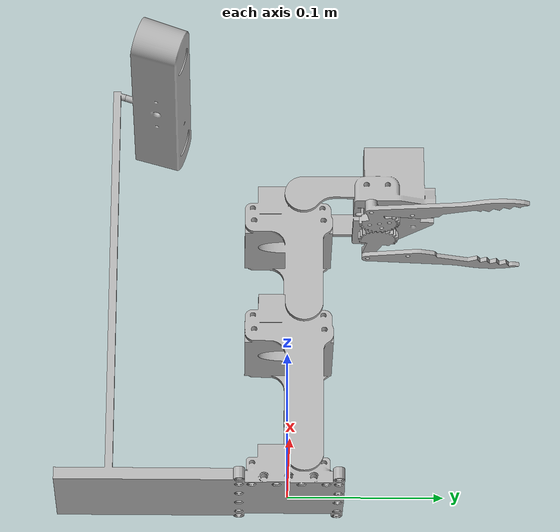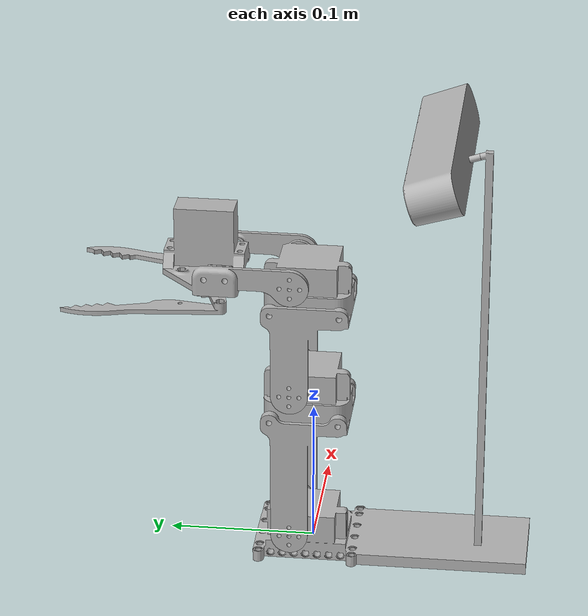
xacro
<?xml version="1.0" ?>
<robot name="urdf" xmlns:xacro="http://www.ros.org/wiki/xacro">

<xacro:include filename="$(find urdf_description)/urdf/materials.xacro" />
<xacro:include filename="$(find urdf_description)/urdf/urdf.trans" />
<xacro:include filename="$(find urdf_description)/urdf/urdf.gazebo" />
<link name="base_link">
  <inertial>
    <origin xyz="-0.018419121453372034 -0.04347962787930961 0.022466381149105926" rpy="0 0 0"/>
    <mass value="1.1098343590164523"/>
    <inertia ixx="0.004864" iyy="0.00191" izz="0.003524" ixy="8.4e-05" iyz="0.000364" ixz="7.2e-05"/>
  </inertial>
  <visual>
    <origin xyz="0 0 0" rpy="0 0 0"/>
    <geometry>
      <mesh filename="package://urdf_description/meshes/base_link.stl" scale="0.001 0.001 0.001"/>
    </geometry>
    <material name="silver"/>
  </visual>
  <collision>
    <origin xyz="0 0 0" rpy="0 0 0"/>
    <geometry>
      <mesh filename="package://urdf_description/meshes/base_link.stl" scale="0.001 0.001 0.001"/>
    </geometry>
  </collision>
</link>

<link name="joint_1_1">
  <inertial>
    <origin xyz="0.021067555565236 -0.008067130091660152 0.08478288411578291" rpy="0 0 0"/>
    <mass value="0.6803438042551072"/>
    <inertia ixx="0.000673" iyy="0.000739" izz="0.000369" ixy="-1e-06" iyz="5.7e-05" ixz="-2.3e-05"/>
  </inertial>
  <visual>
    <origin xyz="0.044317 -0.010886 -0.028435" rpy="0 0 0"/>
    <geometry>
      <mesh filename="package://urdf_description/meshes/joint_1_1.stl" scale="0.001 0.001 0.001"/>
    </geometry>
    <material name="silver"/>
  </visual>
  <collision>
    <origin xyz="0.044317 -0.010886 -0.028435" rpy="0 0 0"/>
    <geometry>
      <mesh filename="package://urdf_description/meshes/joint_1_1.stl" scale="0.001 0.001 0.001"/>
    </geometry>
  </collision>
</link>

<link name="joint_2_1">
  <inertial>
    <origin xyz="0.019708748243424945 -0.008710378611916121 0.06171005750597783" rpy="0 0 0"/>
    <mass value="0.6571313645916408"/>
    <inertia ixx="0.000431" iyy="0.000479" izz="0.000346" ixy="-0.0" iyz="3.6e-05" ixz="-2.3e-05"/>
  </inertial>
  <visual>
    <origin xyz="0.042317 -0.010852 -0.133935" rpy="0 0 0"/>
    <geometry>
      <mesh filename="package://urdf_description/meshes/joint_2_1.stl" scale="0.001 0.001 0.001"/>
    </geometry>
    <material name="silver"/>
  </visual>
  <collision>
    <origin xyz="0.042317 -0.010852 -0.133935" rpy="0 0 0"/>
    <geometry>
      <mesh filename="package://urdf_description/meshes/joint_2_1.stl" scale="0.001 0.001 0.001"/>
    </geometry>
  </collision>
</link>

<link name="hand_joint_1">
  <inertial>
    <origin xyz="0.026861916140880633 0.05321124155566673 0.010768291967462373" rpy="0 0 0"/>
    <mass value="0.44231002244726775"/>
    <inertia ixx="0.000276" iyy="0.000217" izz="0.000341" ixy="-4.5e-05" iyz="-3.2e-05" ixz="-2.7e-05"/>
  </inertial>
  <visual>
    <origin xyz="0.041317 -0.010473 -0.212435" rpy="0 0 0"/>
    <geometry>
      <mesh filename="package://urdf_description/meshes/hand_joint_1.stl" scale="0.001 0.001 0.001"/>
    </geometry>
    <material name="silver"/>
  </visual>
  <collision>
    <origin xyz="0.041317 -0.010473 -0.212435" rpy="0 0 0"/>
    <geometry>
      <mesh filename="package://urdf_description/meshes/hand_joint_1.stl" scale="0.001 0.001 0.001"/>
    </geometry>
  </collision>
</link>

<link name="hand_jaw_1_1">
  <inertial>
    <origin xyz="0.01409096992122242 0.0191761656149391 -0.010805354765224873" rpy="0 0 0"/>
    <mass value="0.05289902818942328"/>
    <inertia ixx="4.2e-05" iyy="1.2e-05" izz="5.3e-05" ixy="-1.6e-05" iyz="3e-06" ixz="2e-06"/>
  </inertial>
  <visual>
    <origin xyz="0.008917 -0.061479 -0.211133" rpy="0 0 0"/>
    <geometry>
      <mesh filename="package://urdf_description/meshes/hand_jaw_1_1.stl" scale="0.001 0.001 0.001"/>
    </geometry>
    <material name="silver"/>
  </visual>
  <collision>
    <origin xyz="0.008917 -0.061479 -0.211133" rpy="0 0 0"/>
    <geometry>
      <mesh filename="package://urdf_description/meshes/hand_jaw_1_1.stl" scale="0.001 0.001 0.001"/>
    </geometry>
  </collision>
</link>

<link name="hand_jaw_2_1">
  <inertial>
    <origin xyz="-0.015303524972097124 0.02064973026808329 -0.00840814371449003" rpy="0 0 0"/>
    <mass value="0.047882225429755725"/>
    <inertia ixx="3.8e-05" iyy="1e-05" izz="4.8e-05" ixy="1.4e-05" iyz="2e-06" ixz="-1e-06"/>
  </inertial>
  <visual>
    <origin xyz="0.033917 -0.061491 -0.208133" rpy="0 0 0"/>
    <geometry>
      <mesh filename="package://urdf_description/meshes/hand_jaw_2_1.stl" scale="0.001 0.001 0.001"/>
    </geometry>
    <material name="silver"/>
  </visual>
  <collision>
    <origin xyz="0.033917 -0.061491 -0.208133" rpy="0 0 0"/>
    <geometry>
      <mesh filename="package://urdf_description/meshes/hand_jaw_2_1.stl" scale="0.001 0.001 0.001"/>
    </geometry>
  </collision>
</link>

<link name="ZED2__1__1">
  <inertial>
    <origin xyz="6.45889991882781e-07 0.024439619285158795 0.001327836880933353" rpy="0 0 0"/>
    <mass value="1.1947522184193673"/>
    <inertia ixx="0.000179" iyy="0.002923" izz="0.002939" ixy="-0.0" iyz="5e-06" ixz="0.0"/>
  </inertial>
  <visual>
    <origin xyz="0.023498 0.110189 -0.299798" rpy="0 0 0"/>
    <geometry>
      <mesh filename="package://urdf_description/meshes/ZED2__1__1.stl" scale="0.001 0.001 0.001"/>
    </geometry>
    <material name="silver"/>
  </visual>
  <collision>
    <origin xyz="0.023498 0.110189 -0.299798" rpy="0 0 0"/>
    <geometry>
      <mesh filename="package://urdf_description/meshes/ZED2__1__1.stl" scale="0.001 0.001 0.001"/>
    </geometry>
  </collision>
</link>

<joint name="Rev1" type="continuous">
  <origin xyz="-0.044317 0.010886 0.028435" rpy="0 0 0"/>
  <parent link="base_link"/>
  <child link="joint_1_1"/>
  <axis xyz="-1.0 0.0 -0.0"/>
</joint>

<joint name="Rev2" type="continuous">
  <origin xyz="0.002 -3.4e-05 0.1055" rpy="0 0 0"/>
  <parent link="joint_1_1"/>
  <child link="joint_2_1"/>
  <axis xyz="-1.0 0.0 -0.0"/>
</joint>

<joint name="Rev3" type="continuous">
  <origin xyz="0.001 -0.000379 0.0785" rpy="0 0 0"/>
  <parent link="joint_2_1"/>
  <child link="hand_joint_1"/>
  <axis xyz="-1.0 0.0 -0.0"/>
</joint>

<joint name="Rev12" type="continuous">
  <origin xyz="0.0324 0.051006 -0.001302" rpy="0 0 0"/>
  <parent link="hand_joint_1"/>
  <child link="hand_jaw_1_1"/>
  <axis xyz="0.0 0.003889 -0.999992"/>
</joint>

<joint name="Rev13" type="continuous">
  <origin xyz="0.0074 0.051018 -0.004302" rpy="0 0 0"/>
  <parent link="hand_joint_1"/>
  <child link="hand_jaw_2_1"/>
  <axis xyz="-0.0 -0.003889 0.999992"/>
</joint>

<joint name="Rigid14" type="fixed">
  <origin xyz="-0.023498 -0.110189 0.299798" rpy="0 0 0"/>
  <parent link="base_link"/>
  <child link="ZED2__1__1"/>
</joint>

</robot>

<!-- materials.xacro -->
<robot name="urdf" xmlns:xacro="http://www.ros.org/wiki/xacro" >

<material name="silver">
  <color rgba="0.700 0.700 0.700 1.000"/>
</material>

</robot>

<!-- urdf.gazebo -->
<robot name="urdf" xmlns:xacro="http://www.ros.org/wiki/xacro" >

<xacro:property name="body_color" value="Gazebo/Silver" />

<gazebo>
  <plugin name="control" filename="libgazebo_ros_control.so"/>
</gazebo>
<gazebo reference="base_link">
  <material>${body_color}</material>
  <mu1>0.2</mu1>
  <mu2>0.2</mu2>
  <selfCollide>true</selfCollide>
  <gravity>true</gravity>
</gazebo>

<gazebo reference="joint_1_1">
  <material>${body_color}</material>
  <mu1>0.2</mu1>
  <mu2>0.2</mu2>
  <selfCollide>true</selfCollide>
</gazebo>

<gazebo reference="joint_2_1">
  <material>${body_color}</material>
  <mu1>0.2</mu1>
  <mu2>0.2</mu2>
  <selfCollide>true</selfCollide>
</gazebo>

<gazebo reference="hand_joint_1">
  <material>${body_color}</material>
  <mu1>0.2</mu1>
  <mu2>0.2</mu2>
  <selfCollide>true</selfCollide>
</gazebo>

<gazebo reference="hand_jaw_1_1">
  <material>${body_color}</material>
  <mu1>0.2</mu1>
  <mu2>0.2</mu2>
  <selfCollide>true</selfCollide>
</gazebo>

<gazebo reference="hand_jaw_2_1">
  <material>${body_color}</material>
  <mu1>0.2</mu1>
  <mu2>0.2</mu2>
  <selfCollide>true</selfCollide>
</gazebo>

<gazebo reference="ZED2__1__1">
  <material>${body_color}</material>
  <mu1>0.2</mu1>
  <mu2>0.2</mu2>
  <selfCollide>true</selfCollide>
</gazebo>

</robot>
